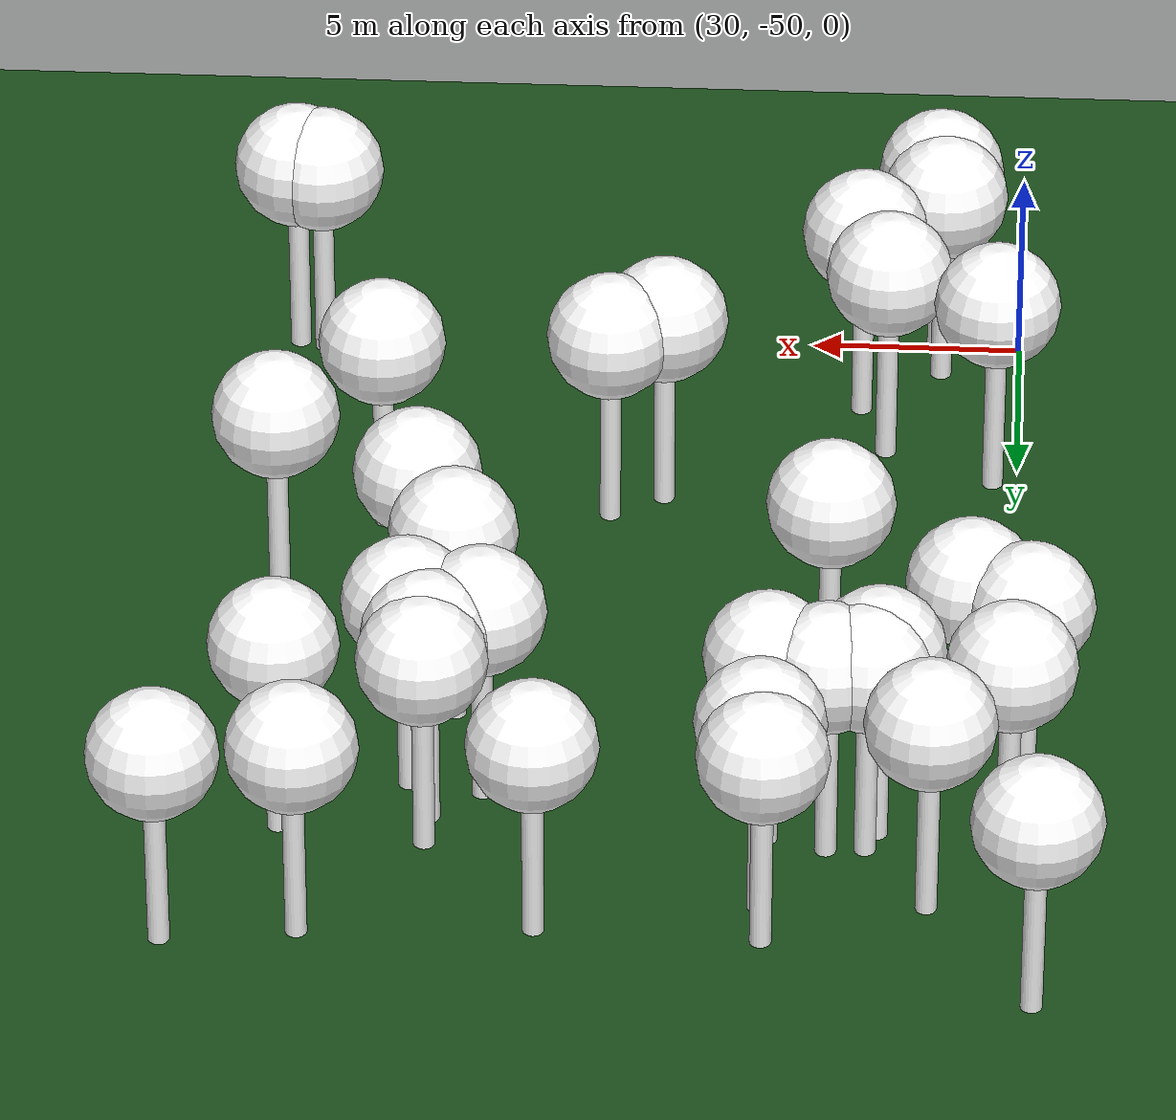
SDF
<sdf version="1.8">
 <world name="forest_world">
  <model name="tree_simple494">
   <static>1</static>
   <link name="link">
    <pose>0 0 0.1 0 -0 0</pose>
    <collision name="collision_trunk">
     <pose>0 0 2 0 -0 0</pose>
     <geometry><cylinder><radius>0.25</radius><length>4</length></cylinder></geometry>
    </collision>
    <collision name="collision_treetop">
     <pose>0 0 5.2 0 -0 0</pose>
     <geometry><sphere><radius>1.5</radius></sphere></geometry>
    </collision>
    <visual name="trunk">
     <pose>0 0 2 0 -0 0</pose>
     <geometry><cylinder><radius>0.25</radius><length>4</length></cylinder></geometry>
     <material>
      <ambient>0.5 0.5 0.5 1</ambient>
      <diffuse>1.0 1.0 1.0 1</diffuse>
      <specular>0.0 0.0 0.0 1</specular>
      <pbr>
       <metal>
        <albedo_map>../worlds/textures/tree_simple_trunk.jpg</albedo_map>
        <metalness>0.0</metalness>
        <roughness>0.8</roughness>
       </metal>
      </pbr>
     </material>
    </visual>
    <visual name="treetop">
     <pose>0 0 5.2 0 -0 0</pose>
     <geometry><sphere><radius>1.5</radius></sphere></geometry>
     <material>
      <ambient>0.5 0.5 0.5 1</ambient>
      <diffuse>1.0 1.0 1.0 1</diffuse>
      <specular>0.0 0.0 0.0 1</specular>
      <pbr>
       <metal>
        <albedo_map>../worlds/textures/tree_simple_treetop.jpg</albedo_map>
        <metalness>0.0</metalness>
        <roughness>0.9</roughness>
       </metal>
      </pbr>
     </material>
    </visual>
   </link>
   <pose>39.6521252177 -42.647901406 0 0 -0 0</pose>
  </model>
  <model name="tree_simple429">
   <static>1</static>
   <link name="link">
    <pose>0 0 0.1 0 -0 0</pose>
    <collision name="collision_trunk">
     <pose>0 0 2 0 -0 0</pose>
     <geometry><cylinder><radius>0.25</radius><length>4</length></cylinder></geometry>
    </collision>
    <collision name="collision_treetop">
     <pose>0 0 5.2 0 -0 0</pose>
     <geometry><sphere><radius>1.5</radius></sphere></geometry>
    </collision>
    <visual name="trunk">
     <pose>0 0 2 0 -0 0</pose>
     <geometry><cylinder><radius>0.25</radius><length>4</length></cylinder></geometry>
     <material>
      <ambient>0.5 0.5 0.5 1</ambient>
      <diffuse>1.0 1.0 1.0 1</diffuse>
      <specular>0.0 0.0 0.0 1</specular>
      <pbr>
       <metal>
        <albedo_map>../worlds/textures/tree_simple_trunk.jpg</albedo_map>
        <metalness>0.0</metalness>
        <roughness>0.8</roughness>
       </metal>
      </pbr>
     </material>
    </visual>
    <visual name="treetop">
     <pose>0 0 5.2 0 -0 0</pose>
     <geometry><sphere><radius>1.5</radius></sphere></geometry>
     <material>
      <ambient>0.5 0.5 0.5 1</ambient>
      <diffuse>1.0 1.0 1.0 1</diffuse>
      <specular>0.0 0.0 0.0 1</specular>
      <pbr>
       <metal>
        <albedo_map>../worlds/textures/tree_simple_treetop.jpg</albedo_map>
        <metalness>0.0</metalness>
        <roughness>0.9</roughness>
       </metal>
      </pbr>
     </material>
    </visual>
   </link>
   <pose>29.4727075469 -24.7358283571 0 0 -0 0</pose>
  </model>
  <model name="tree_simple422">
   <static>1</static>
   <link name="link">
    <pose>0 0 0.1 0 -0 0</pose>
    <collision name="collision_trunk">
     <pose>0 0 2 0 -0 0</pose>
     <geometry><cylinder><radius>0.25</radius><length>4</length></cylinder></geometry>
    </collision>
    <collision name="collision_treetop">
     <pose>0 0 5.2 0 -0 0</pose>
     <geometry><sphere><radius>1.5</radius></sphere></geometry>
    </collision>
    <visual name="trunk">
     <pose>0 0 2 0 -0 0</pose>
     <geometry><cylinder><radius>0.25</radius><length>4</length></cylinder></geometry>
     <material>
      <ambient>0.5 0.5 0.5 1</ambient>
      <diffuse>1.0 1.0 1.0 1</diffuse>
      <specular>0.0 0.0 0.0 1</specular>
      <pbr>
       <metal>
        <albedo_map>../worlds/textures/tree_simple_trunk.jpg</albedo_map>
        <metalness>0.0</metalness>
        <roughness>0.8</roughness>
       </metal>
      </pbr>
     </material>
    </visual>
    <visual name="treetop">
     <pose>0 0 5.2 0 -0 0</pose>
     <geometry><sphere><radius>1.5</radius></sphere></geometry>
     <material>
      <ambient>0.5 0.5 0.5 1</ambient>
      <diffuse>1.0 1.0 1.0 1</diffuse>
      <specular>0.0 0.0 0.0 1</specular>
      <pbr>
       <metal>
        <albedo_map>../worlds/textures/tree_simple_treetop.jpg</albedo_map>
        <metalness>0.0</metalness>
        <roughness>0.9</roughness>
       </metal>
      </pbr>
     </material>
    </visual>
   </link>
   <pose>46.9340594409 -49.3003062786 0 0 -0 0</pose>
  </model>
  <model name="tree_simple406">
   <static>1</static>
   <link name="link">
    <pose>0 0 0.1 0 -0 0</pose>
    <collision name="collision_trunk">
     <pose>0 0 2 0 -0 0</pose>
     <geometry><cylinder><radius>0.25</radius><length>4</length></cylinder></geometry>
    </collision>
    <collision name="collision_treetop">
     <pose>0 0 5.2 0 -0 0</pose>
     <geometry><sphere><radius>1.5</radius></sphere></geometry>
    </collision>
    <visual name="trunk">
     <pose>0 0 2 0 -0 0</pose>
     <geometry><cylinder><radius>0.25</radius><length>4</length></cylinder></geometry>
     <material>
      <ambient>0.5 0.5 0.5 1</ambient>
      <diffuse>1.0 1.0 1.0 1</diffuse>
      <specular>0.0 0.0 0.0 1</specular>
      <pbr>
       <metal>
        <albedo_map>../worlds/textures/tree_simple_trunk.jpg</albedo_map>
        <metalness>0.0</metalness>
        <roughness>0.8</roughness>
       </metal>
      </pbr>
     </material>
    </visual>
    <visual name="treetop">
     <pose>0 0 5.2 0 -0 0</pose>
     <geometry><sphere><radius>1.5</radius></sphere></geometry>
     <material>
      <ambient>0.5 0.5 0.5 1</ambient>
      <diffuse>1.0 1.0 1.0 1</diffuse>
      <specular>0.0 0.0 0.0 1</specular>
      <pbr>
       <metal>
        <albedo_map>../worlds/textures/tree_simple_treetop.jpg</albedo_map>
        <metalness>0.0</metalness>
        <roughness>0.9</roughness>
       </metal>
      </pbr>
     </material>
    </visual>
   </link>
   <pose>31.8934217089 -48.8403630258 0 0 -0 0</pose>
  </model>
  <model name="tree_simple400">
   <static>1</static>
   <link name="link">
    <pose>0 0 0.1 0 -0 0</pose>
    <collision name="collision_trunk">
     <pose>0 0 2 0 -0 0</pose>
     <geometry><cylinder><radius>0.25</radius><length>4</length></cylinder></geometry>
    </collision>
    <collision name="collision_treetop">
     <pose>0 0 5.2 0 -0 0</pose>
     <geometry><sphere><radius>1.5</radius></sphere></geometry>
    </collision>
    <visual name="trunk">
     <pose>0 0 2 0 -0 0</pose>
     <geometry><cylinder><radius>0.25</radius><length>4</length></cylinder></geometry>
     <material>
      <ambient>0.5 0.5 0.5 1</ambient>
      <diffuse>1.0 1.0 1.0 1</diffuse>
      <specular>0.0 0.0 0.0 1</specular>
      <pbr>
       <metal>
        <albedo_map>../worlds/textures/tree_simple_trunk.jpg</albedo_map>
        <metalness>0.0</metalness>
        <roughness>0.8</roughness>
       </metal>
      </pbr>
     </material>
    </visual>
    <visual name="treetop">
     <pose>0 0 5.2 0 -0 0</pose>
     <geometry><sphere><radius>1.5</radius></sphere></geometry>
     <material>
      <ambient>0.5 0.5 0.5 1</ambient>
      <diffuse>1.0 1.0 1.0 1</diffuse>
      <specular>0.0 0.0 0.0 1</specular>
      <pbr>
       <metal>
        <albedo_map>../worlds/textures/tree_simple_treetop.jpg</albedo_map>
        <metalness>0.0</metalness>
        <roughness>0.9</roughness>
       </metal>
      </pbr>
     </material>
    </visual>
   </link>
   <pose>43.2651902792 -29.893141503 0 0 -0 0</pose>
  </model>
  <model name="tree_simple379">
   <static>1</static>
   <link name="link">
    <pose>0 0 0.1 0 -0 0</pose>
    <collision name="collision_trunk">
     <pose>0 0 2 0 -0 0</pose>
     <geometry><cylinder><radius>0.25</radius><length>4</length></cylinder></geometry>
    </collision>
    <collision name="collision_treetop">
     <pose>0 0 5.2 0 -0 0</pose>
     <geometry><sphere><radius>1.5</radius></sphere></geometry>
    </collision>
    <visual name="trunk">
     <pose>0 0 2 0 -0 0</pose>
     <geometry><cylinder><radius>0.25</radius><length>4</length></cylinder></geometry>
     <material>
      <ambient>0.5 0.5 0.5 1</ambient>
      <diffuse>1.0 1.0 1.0 1</diffuse>
      <specular>0.0 0.0 0.0 1</specular>
      <pbr>
       <metal>
        <albedo_map>../worlds/textures/tree_simple_trunk.jpg</albedo_map>
        <metalness>0.0</metalness>
        <roughness>0.8</roughness>
       </metal>
      </pbr>
     </material>
    </visual>
    <visual name="treetop">
     <pose>0 0 5.2 0 -0 0</pose>
     <geometry><sphere><radius>1.5</radius></sphere></geometry>
     <material>
      <ambient>0.5 0.5 0.5 1</ambient>
      <diffuse>1.0 1.0 1.0 1</diffuse>
      <specular>0.0 0.0 0.0 1</specular>
      <pbr>
       <metal>
        <albedo_map>../worlds/textures/tree_simple_treetop.jpg</albedo_map>
        <metalness>0.0</metalness>
        <roughness>0.9</roughness>
       </metal>
      </pbr>
     </material>
    </visual>
   </link>
   <pose>35.6338366469 -27.9469397224 0 0 -0 0</pose>
  </model>
  <model name="tree_simple362">
   <static>1</static>
   <link name="link">
    <pose>0 0 0.1 0 -0 0</pose>
    <collision name="collision_trunk">
     <pose>0 0 2 0 -0 0</pose>
     <geometry><cylinder><radius>0.25</radius><length>4</length></cylinder></geometry>
    </collision>
    <collision name="collision_treetop">
     <pose>0 0 5.2 0 -0 0</pose>
     <geometry><sphere><radius>1.5</radius></sphere></geometry>
    </collision>
    <visual name="trunk">
     <pose>0 0 2 0 -0 0</pose>
     <geometry><cylinder><radius>0.25</radius><length>4</length></cylinder></geometry>
     <material>
      <ambient>0.5 0.5 0.5 1</ambient>
      <diffuse>1.0 1.0 1.0 1</diffuse>
      <specular>0.0 0.0 0.0 1</specular>
      <pbr>
       <metal>
        <albedo_map>../worlds/textures/tree_simple_trunk.jpg</albedo_map>
        <metalness>0.0</metalness>
        <roughness>0.8</roughness>
       </metal>
      </pbr>
     </material>
    </visual>
    <visual name="treetop">
     <pose>0 0 5.2 0 -0 0</pose>
     <geometry><sphere><radius>1.5</radius></sphere></geometry>
     <material>
      <ambient>0.5 0.5 0.5 1</ambient>
      <diffuse>1.0 1.0 1.0 1</diffuse>
      <specular>0.0 0.0 0.0 1</specular>
      <pbr>
       <metal>
        <albedo_map>../worlds/textures/tree_simple_treetop.jpg</albedo_map>
        <metalness>0.0</metalness>
        <roughness>0.9</roughness>
       </metal>
      </pbr>
     </material>
    </visual>
   </link>
   <pose>44.985496552 -42.1503793978 0 0 -0 0</pose>
  </model>
  <model name="tree_simple361">
   <static>1</static>
   <link name="link">
    <pose>0 0 0.1 0 -0 0</pose>
    <collision name="collision_trunk">
     <pose>0 0 2 0 -0 0</pose>
     <geometry><cylinder><radius>0.25</radius><length>4</length></cylinder></geometry>
    </collision>
    <collision name="collision_treetop">
     <pose>0 0 5.2 0 -0 0</pose>
     <geometry><sphere><radius>1.5</radius></sphere></geometry>
    </collision>
    <visual name="trunk">
     <pose>0 0 2 0 -0 0</pose>
     <geometry><cylinder><radius>0.25</radius><length>4</length></cylinder></geometry>
     <material>
      <ambient>0.5 0.5 0.5 1</ambient>
      <diffuse>1.0 1.0 1.0 1</diffuse>
      <specular>0.0 0.0 0.0 1</specular>
      <pbr>
       <metal>
        <albedo_map>../worlds/textures/tree_simple_trunk.jpg</albedo_map>
        <metalness>0.0</metalness>
        <roughness>0.8</roughness>
       </metal>
      </pbr>
     </material>
    </visual>
    <visual name="treetop">
     <pose>0 0 5.2 0 -0 0</pose>
     <geometry><sphere><radius>1.5</radius></sphere></geometry>
     <material>
      <ambient>0.5 0.5 0.5 1</ambient>
      <diffuse>1.0 1.0 1.0 1</diffuse>
      <specular>0.0 0.0 0.0 1</specular>
      <pbr>
       <metal>
        <albedo_map>../worlds/textures/tree_simple_treetop.jpg</albedo_map>
        <metalness>0.0</metalness>
        <roughness>0.9</roughness>
       </metal>
      </pbr>
     </material>
    </visual>
   </link>
   <pose>35.5366757962 -26.7239082098 0 0 -0 0</pose>
  </model>
  <model name="tree_simple330">
   <static>1</static>
   <link name="link">
    <pose>0 0 0.1 0 -0 0</pose>
    <collision name="collision_trunk">
     <pose>0 0 2 0 -0 0</pose>
     <geometry><cylinder><radius>0.25</radius><length>4</length></cylinder></geometry>
    </collision>
    <collision name="collision_treetop">
     <pose>0 0 5.2 0 -0 0</pose>
     <geometry><sphere><radius>1.5</radius></sphere></geometry>
    </collision>
    <visual name="trunk">
     <pose>0 0 2 0 -0 0</pose>
     <geometry><cylinder><radius>0.25</radius><length>4</length></cylinder></geometry>
     <material>
      <ambient>0.5 0.5 0.5 1</ambient>
      <diffuse>1.0 1.0 1.0 1</diffuse>
      <specular>0.0 0.0 0.0 1</specular>
      <pbr>
       <metal>
        <albedo_map>../worlds/textures/tree_simple_trunk.jpg</albedo_map>
        <metalness>0.0</metalness>
        <roughness>0.8</roughness>
       </metal>
      </pbr>
     </material>
    </visual>
    <visual name="treetop">
     <pose>0 0 5.2 0 -0 0</pose>
     <geometry><sphere><radius>1.5</radius></sphere></geometry>
     <material>
      <ambient>0.5 0.5 0.5 1</ambient>
      <diffuse>1.0 1.0 1.0 1</diffuse>
      <specular>0.0 0.0 0.0 1</specular>
      <pbr>
       <metal>
        <albedo_map>../worlds/textures/tree_simple_treetop.jpg</albedo_map>
        <metalness>0.0</metalness>
        <roughness>0.9</roughness>
       </metal>
      </pbr>
     </material>
    </visual>
   </link>
   <pose>46.6176543064 -30.3534647409 0 0 -0 0</pose>
  </model>
  <model name="tree_simple321">
   <static>1</static>
   <link name="link">
    <pose>0 0 0.1 0 -0 0</pose>
    <collision name="collision_trunk">
     <pose>0 0 2 0 -0 0</pose>
     <geometry><cylinder><radius>0.25</radius><length>4</length></cylinder></geometry>
    </collision>
    <collision name="collision_treetop">
     <pose>0 0 5.2 0 -0 0</pose>
     <geometry><sphere><radius>1.5</radius></sphere></geometry>
    </collision>
    <visual name="trunk">
     <pose>0 0 2 0 -0 0</pose>
     <geometry><cylinder><radius>0.25</radius><length>4</length></cylinder></geometry>
     <material>
      <ambient>0.5 0.5 0.5 1</ambient>
      <diffuse>1.0 1.0 1.0 1</diffuse>
      <specular>0.0 0.0 0.0 1</specular>
      <pbr>
       <metal>
        <albedo_map>../worlds/textures/tree_simple_trunk.jpg</albedo_map>
        <metalness>0.0</metalness>
        <roughness>0.8</roughness>
       </metal>
      </pbr>
     </material>
    </visual>
    <visual name="treetop">
     <pose>0 0 5.2 0 -0 0</pose>
     <geometry><sphere><radius>1.5</radius></sphere></geometry>
     <material>
      <ambient>0.5 0.5 0.5 1</ambient>
      <diffuse>1.0 1.0 1.0 1</diffuse>
      <specular>0.0 0.0 0.0 1</specular>
      <pbr>
       <metal>
        <albedo_map>../worlds/textures/tree_simple_treetop.jpg</albedo_map>
        <metalness>0.0</metalness>
        <roughness>0.9</roughness>
       </metal>
      </pbr>
     </material>
    </visual>
   </link>
   <pose>42.046648374 -31.7938593585 0 0 -0 0</pose>
  </model>
  <model name="tree_simple300">
   <static>1</static>
   <link name="link">
    <pose>0 0 0.1 0 -0 0</pose>
    <collision name="collision_trunk">
     <pose>0 0 2 0 -0 0</pose>
     <geometry><cylinder><radius>0.25</radius><length>4</length></cylinder></geometry>
    </collision>
    <collision name="collision_treetop">
     <pose>0 0 5.2 0 -0 0</pose>
     <geometry><sphere><radius>1.5</radius></sphere></geometry>
    </collision>
    <visual name="trunk">
     <pose>0 0 2 0 -0 0</pose>
     <geometry><cylinder><radius>0.25</radius><length>4</length></cylinder></geometry>
     <material>
      <ambient>0.5 0.5 0.5 1</ambient>
      <diffuse>1.0 1.0 1.0 1</diffuse>
      <specular>0.0 0.0 0.0 1</specular>
      <pbr>
       <metal>
        <albedo_map>../worlds/textures/tree_simple_trunk.jpg</albedo_map>
        <metalness>0.0</metalness>
        <roughness>0.8</roughness>
       </metal>
      </pbr>
     </material>
    </visual>
    <visual name="treetop">
     <pose>0 0 5.2 0 -0 0</pose>
     <geometry><sphere><radius>1.5</radius></sphere></geometry>
     <material>
      <ambient>0.5 0.5 0.5 1</ambient>
      <diffuse>1.0 1.0 1.0 1</diffuse>
      <specular>0.0 0.0 0.0 1</specular>
      <pbr>
       <metal>
        <albedo_map>../worlds/textures/tree_simple_treetop.jpg</albedo_map>
        <metalness>0.0</metalness>
        <roughness>0.9</roughness>
       </metal>
      </pbr>
     </material>
    </visual>
   </link>
   <pose>34.2893754597 -36.2522401159 0 0 -0 0</pose>
  </model>
  <model name="tree_simple298">
   <static>1</static>
   <link name="link">
    <pose>0 0 0.1 0 -0 0</pose>
    <collision name="collision_trunk">
     <pose>0 0 2 0 -0 0</pose>
     <geometry><cylinder><radius>0.25</radius><length>4</length></cylinder></geometry>
    </collision>
    <collision name="collision_treetop">
     <pose>0 0 5.2 0 -0 0</pose>
     <geometry><sphere><radius>1.5</radius></sphere></geometry>
    </collision>
    <visual name="trunk">
     <pose>0 0 2 0 -0 0</pose>
     <geometry><cylinder><radius>0.25</radius><length>4</length></cylinder></geometry>
     <material>
      <ambient>0.5 0.5 0.5 1</ambient>
      <diffuse>1.0 1.0 1.0 1</diffuse>
      <specular>0.0 0.0 0.0 1</specular>
      <pbr>
       <metal>
        <albedo_map>../worlds/textures/tree_simple_trunk.jpg</albedo_map>
        <metalness>0.0</metalness>
        <roughness>0.8</roughness>
       </metal>
      </pbr>
     </material>
    </visual>
    <visual name="treetop">
     <pose>0 0 5.2 0 -0 0</pose>
     <geometry><sphere><radius>1.5</radius></sphere></geometry>
     <material>
      <ambient>0.5 0.5 0.5 1</ambient>
      <diffuse>1.0 1.0 1.0 1</diffuse>
      <specular>0.0 0.0 0.0 1</specular>
      <pbr>
       <metal>
        <albedo_map>../worlds/textures/tree_simple_treetop.jpg</albedo_map>
        <metalness>0.0</metalness>
        <roughness>0.9</roughness>
       </metal>
      </pbr>
     </material>
    </visual>
   </link>
   <pose>33.2901714534 -30.1267743678 0 0 -0 0</pose>
  </model>
  <model name="tree_simple280">
   <static>1</static>
   <link name="link">
    <pose>0 0 0.1 0 -0 0</pose>
    <collision name="collision_trunk">
     <pose>0 0 2 0 -0 0</pose>
     <geometry><cylinder><radius>0.25</radius><length>4</length></cylinder></geometry>
    </collision>
    <collision name="collision_treetop">
     <pose>0 0 5.2 0 -0 0</pose>
     <geometry><sphere><radius>1.5</radius></sphere></geometry>
    </collision>
    <visual name="trunk">
     <pose>0 0 2 0 -0 0</pose>
     <geometry><cylinder><radius>0.25</radius><length>4</length></cylinder></geometry>
     <material>
      <ambient>0.5 0.5 0.5 1</ambient>
      <diffuse>1.0 1.0 1.0 1</diffuse>
      <specular>0.0 0.0 0.0 1</specular>
      <pbr>
       <metal>
        <albedo_map>../worlds/textures/tree_simple_trunk.jpg</albedo_map>
        <metalness>0.0</metalness>
        <roughness>0.8</roughness>
       </metal>
      </pbr>
     </material>
    </visual>
    <visual name="treetop">
     <pose>0 0 5.2 0 -0 0</pose>
     <geometry><sphere><radius>1.5</radius></sphere></geometry>
     <material>
      <ambient>0.5 0.5 0.5 1</ambient>
      <diffuse>1.0 1.0 1.0 1</diffuse>
      <specular>0.0 0.0 0.0 1</specular>
      <pbr>
       <metal>
        <albedo_map>../worlds/textures/tree_simple_treetop.jpg</albedo_map>
        <metalness>0.0</metalness>
        <roughness>0.9</roughness>
       </metal>
      </pbr>
     </material>
    </visual>
   </link>
   <pose>42.8499474232 -34.7520527621 0 0 -0 0</pose>
  </model>
  <model name="tree_simple263">
   <static>1</static>
   <link name="link">
    <pose>0 0 0.1 0 -0 0</pose>
    <collision name="collision_trunk">
     <pose>0 0 2 0 -0 0</pose>
     <geometry><cylinder><radius>0.25</radius><length>4</length></cylinder></geometry>
    </collision>
    <collision name="collision_treetop">
     <pose>0 0 5.2 0 -0 0</pose>
     <geometry><sphere><radius>1.5</radius></sphere></geometry>
    </collision>
    <visual name="trunk">
     <pose>0 0 2 0 -0 0</pose>
     <geometry><cylinder><radius>0.25</radius><length>4</length></cylinder></geometry>
     <material>
      <ambient>0.5 0.5 0.5 1</ambient>
      <diffuse>1.0 1.0 1.0 1</diffuse>
      <specular>0.0 0.0 0.0 1</specular>
      <pbr>
       <metal>
        <albedo_map>../worlds/textures/tree_simple_trunk.jpg</albedo_map>
        <metalness>0.0</metalness>
        <roughness>0.8</roughness>
       </metal>
      </pbr>
     </material>
    </visual>
    <visual name="treetop">
     <pose>0 0 5.2 0 -0 0</pose>
     <geometry><sphere><radius>1.5</radius></sphere></geometry>
     <material>
      <ambient>0.5 0.5 0.5 1</ambient>
      <diffuse>1.0 1.0 1.0 1</diffuse>
      <specular>0.0 0.0 0.0 1</specular>
      <pbr>
       <metal>
        <albedo_map>../worlds/textures/tree_simple_treetop.jpg</albedo_map>
        <metalness>0.0</metalness>
        <roughness>0.9</roughness>
       </metal>
      </pbr>
     </material>
    </visual>
   </link>
   <pose>40.6294575453 -26.8945764261 0 0 -0 0</pose>
  </model>
  <model name="tree_simple261">
   <static>1</static>
   <link name="link">
    <pose>0 0 0.1 0 -0 0</pose>
    <collision name="collision_trunk">
     <pose>0 0 2 0 -0 0</pose>
     <geometry><cylinder><radius>0.25</radius><length>4</length></cylinder></geometry>
    </collision>
    <collision name="collision_treetop">
     <pose>0 0 5.2 0 -0 0</pose>
     <geometry><sphere><radius>1.5</radius></sphere></geometry>
    </collision>
    <visual name="trunk">
     <pose>0 0 2 0 -0 0</pose>
     <geometry><cylinder><radius>0.25</radius><length>4</length></cylinder></geometry>
     <material>
      <ambient>0.5 0.5 0.5 1</ambient>
      <diffuse>1.0 1.0 1.0 1</diffuse>
      <specular>0.0 0.0 0.0 1</specular>
      <pbr>
       <metal>
        <albedo_map>../worlds/textures/tree_simple_trunk.jpg</albedo_map>
        <metalness>0.0</metalness>
        <roughness>0.8</roughness>
       </metal>
      </pbr>
     </material>
    </visual>
    <visual name="treetop">
     <pose>0 0 5.2 0 -0 0</pose>
     <geometry><sphere><radius>1.5</radius></sphere></geometry>
     <material>
      <ambient>0.5 0.5 0.5 1</ambient>
      <diffuse>1.0 1.0 1.0 1</diffuse>
      <specular>0.0 0.0 0.0 1</specular>
      <pbr>
       <metal>
        <albedo_map>../worlds/textures/tree_simple_treetop.jpg</albedo_map>
        <metalness>0.0</metalness>
        <roughness>0.9</roughness>
       </metal>
      </pbr>
     </material>
    </visual>
   </link>
   <pose>33.7827414367 -47.2764136507 0 0 -0 0</pose>
  </model>
  <model name="tree_simple255">
   <static>1</static>
   <link name="link">
    <pose>0 0 0.1 0 -0 0</pose>
    <collision name="collision_trunk">
     <pose>0 0 2 0 -0 0</pose>
     <geometry><cylinder><radius>0.25</radius><length>4</length></cylinder></geometry>
    </collision>
    <collision name="collision_treetop">
     <pose>0 0 5.2 0 -0 0</pose>
     <geometry><sphere><radius>1.5</radius></sphere></geometry>
    </collision>
    <visual name="trunk">
     <pose>0 0 2 0 -0 0</pose>
     <geometry><cylinder><radius>0.25</radius><length>4</length></cylinder></geometry>
     <material>
      <ambient>0.5 0.5 0.5 1</ambient>
      <diffuse>1.0 1.0 1.0 1</diffuse>
      <specular>0.0 0.0 0.0 1</specular>
      <pbr>
       <metal>
        <albedo_map>../worlds/textures/tree_simple_trunk.jpg</albedo_map>
        <metalness>0.0</metalness>
        <roughness>0.8</roughness>
       </metal>
      </pbr>
     </material>
    </visual>
    <visual name="treetop">
     <pose>0 0 5.2 0 -0 0</pose>
     <geometry><sphere><radius>1.5</radius></sphere></geometry>
     <material>
      <ambient>0.5 0.5 0.5 1</ambient>
      <diffuse>1.0 1.0 1.0 1</diffuse>
      <specular>0.0 0.0 0.0 1</specular>
      <pbr>
       <metal>
        <albedo_map>../worlds/textures/tree_simple_treetop.jpg</albedo_map>
        <metalness>0.0</metalness>
        <roughness>0.9</roughness>
       </metal>
      </pbr>
     </material>
    </visual>
   </link>
   <pose>30.0970419452 -30.3026780561 0 0 -0 0</pose>
  </model>
  <model name="tree_simple243">
   <static>1</static>
   <link name="link">
    <pose>0 0 0.1 0 -0 0</pose>
    <collision name="collision_trunk">
     <pose>0 0 2 0 -0 0</pose>
     <geometry><cylinder><radius>0.25</radius><length>4</length></cylinder></geometry>
    </collision>
    <collision name="collision_treetop">
     <pose>0 0 5.2 0 -0 0</pose>
     <geometry><sphere><radius>1.5</radius></sphere></geometry>
    </collision>
    <visual name="trunk">
     <pose>0 0 2 0 -0 0</pose>
     <geometry><cylinder><radius>0.25</radius><length>4</length></cylinder></geometry>
     <material>
      <ambient>0.5 0.5 0.5 1</ambient>
      <diffuse>1.0 1.0 1.0 1</diffuse>
      <specular>0.0 0.0 0.0 1</specular>
      <pbr>
       <metal>
        <albedo_map>../worlds/textures/tree_simple_trunk.jpg</albedo_map>
        <metalness>0.0</metalness>
        <roughness>0.8</roughness>
       </metal>
      </pbr>
     </material>
    </visual>
    <visual name="treetop">
     <pose>0 0 5.2 0 -0 0</pose>
     <geometry><sphere><radius>1.5</radius></sphere></geometry>
     <material>
      <ambient>0.5 0.5 0.5 1</ambient>
      <diffuse>1.0 1.0 1.0 1</diffuse>
      <specular>0.0 0.0 0.0 1</specular>
      <pbr>
       <metal>
        <albedo_map>../worlds/textures/tree_simple_treetop.jpg</albedo_map>
        <metalness>0.0</metalness>
        <roughness>0.9</roughness>
       </metal>
      </pbr>
     </material>
    </visual>
   </link>
   <pose>48.9656449897 -26.1871742827 0 0 -0 0</pose>
  </model>
  <model name="tree_simple225">
   <static>1</static>
   <link name="link">
    <pose>0 0 0.1 0 -0 0</pose>
    <collision name="collision_trunk">
     <pose>0 0 2 0 -0 0</pose>
     <geometry><cylinder><radius>0.25</radius><length>4</length></cylinder></geometry>
    </collision>
    <collision name="collision_treetop">
     <pose>0 0 5.2 0 -0 0</pose>
     <geometry><sphere><radius>1.5</radius></sphere></geometry>
    </collision>
    <visual name="trunk">
     <pose>0 0 2 0 -0 0</pose>
     <geometry><cylinder><radius>0.25</radius><length>4</length></cylinder></geometry>
     <material>
      <ambient>0.5 0.5 0.5 1</ambient>
      <diffuse>1.0 1.0 1.0 1</diffuse>
      <specular>0.0 0.0 0.0 1</specular>
      <pbr>
       <metal>
        <albedo_map>../worlds/textures/tree_simple_trunk.jpg</albedo_map>
        <metalness>0.0</metalness>
        <roughness>0.8</roughness>
       </metal>
      </pbr>
     </material>
    </visual>
    <visual name="treetop">
     <pose>0 0 5.2 0 -0 0</pose>
     <geometry><sphere><radius>1.5</radius></sphere></geometry>
     <material>
      <ambient>0.5 0.5 0.5 1</ambient>
      <diffuse>1.0 1.0 1.0 1</diffuse>
      <specular>0.0 0.0 0.0 1</specular>
      <pbr>
       <metal>
        <albedo_map>../worlds/textures/tree_simple_treetop.jpg</albedo_map>
        <metalness>0.0</metalness>
        <roughness>0.9</roughness>
       </metal>
      </pbr>
     </material>
    </visual>
   </link>
   <pose>30.586439973 -44.3528824328 0 0 -0 0</pose>
  </model>
  <model name="tree_simple207">
   <static>1</static>
   <link name="link">
    <pose>0 0 0.1 0 -0 0</pose>
    <collision name="collision_trunk">
     <pose>0 0 2 0 -0 0</pose>
     <geometry><cylinder><radius>0.25</radius><length>4</length></cylinder></geometry>
    </collision>
    <collision name="collision_treetop">
     <pose>0 0 5.2 0 -0 0</pose>
     <geometry><sphere><radius>1.5</radius></sphere></geometry>
    </collision>
    <visual name="trunk">
     <pose>0 0 2 0 -0 0</pose>
     <geometry><cylinder><radius>0.25</radius><length>4</length></cylinder></geometry>
     <material>
      <ambient>0.5 0.5 0.5 1</ambient>
      <diffuse>1.0 1.0 1.0 1</diffuse>
      <specular>0.0 0.0 0.0 1</specular>
      <pbr>
       <metal>
        <albedo_map>../worlds/textures/tree_simple_trunk.jpg</albedo_map>
        <metalness>0.0</metalness>
        <roughness>0.8</roughness>
       </metal>
      </pbr>
     </material>
    </visual>
    <visual name="treetop">
     <pose>0 0 5.2 0 -0 0</pose>
     <geometry><sphere><radius>1.5</radius></sphere></geometry>
     <material>
      <ambient>0.5 0.5 0.5 1</ambient>
      <diffuse>1.0 1.0 1.0 1</diffuse>
      <specular>0.0 0.0 0.0 1</specular>
      <pbr>
       <metal>
        <albedo_map>../worlds/textures/tree_simple_treetop.jpg</albedo_map>
        <metalness>0.0</metalness>
        <roughness>0.9</roughness>
       </metal>
      </pbr>
     </material>
    </visual>
   </link>
   <pose>29.7171513821 -32.5331350523 0 0 -0 0</pose>
  </model>
  <model name="tree_simple202">
   <static>1</static>
   <link name="link">
    <pose>0 0 0.1 0 -0 0</pose>
    <collision name="collision_trunk">
     <pose>0 0 2 0 -0 0</pose>
     <geometry><cylinder><radius>0.25</radius><length>4</length></cylinder></geometry>
    </collision>
    <collision name="collision_treetop">
     <pose>0 0 5.2 0 -0 0</pose>
     <geometry><sphere><radius>1.5</radius></sphere></geometry>
    </collision>
    <visual name="trunk">
     <pose>0 0 2 0 -0 0</pose>
     <geometry><cylinder><radius>0.25</radius><length>4</length></cylinder></geometry>
     <material>
      <ambient>0.5 0.5 0.5 1</ambient>
      <diffuse>1.0 1.0 1.0 1</diffuse>
      <specular>0.0 0.0 0.0 1</specular>
      <pbr>
       <metal>
        <albedo_map>../worlds/textures/tree_simple_trunk.jpg</albedo_map>
        <metalness>0.0</metalness>
        <roughness>0.8</roughness>
       </metal>
      </pbr>
     </material>
    </visual>
    <visual name="treetop">
     <pose>0 0 5.2 0 -0 0</pose>
     <geometry><sphere><radius>1.5</radius></sphere></geometry>
     <material>
      <ambient>0.5 0.5 0.5 1</ambient>
      <diffuse>1.0 1.0 1.0 1</diffuse>
      <specular>0.0 0.0 0.0 1</specular>
      <pbr>
       <metal>
        <albedo_map>../worlds/textures/tree_simple_treetop.jpg</albedo_map>
        <metalness>0.0</metalness>
        <roughness>0.9</roughness>
       </metal>
      </pbr>
     </material>
    </visual>
   </link>
   <pose>33.1651643467 -45.5260416914 0 0 -0 0</pose>
  </model>
  <model name="tree_simple182">
   <static>1</static>
   <link name="link">
    <pose>0 0 0.1 0 -0 0</pose>
    <collision name="collision_trunk">
     <pose>0 0 2 0 -0 0</pose>
     <geometry><cylinder><radius>0.25</radius><length>4</length></cylinder></geometry>
    </collision>
    <collision name="collision_treetop">
     <pose>0 0 5.2 0 -0 0</pose>
     <geometry><sphere><radius>1.5</radius></sphere></geometry>
    </collision>
    <visual name="trunk">
     <pose>0 0 2 0 -0 0</pose>
     <geometry><cylinder><radius>0.25</radius><length>4</length></cylinder></geometry>
     <material>
      <ambient>0.5 0.5 0.5 1</ambient>
      <diffuse>1.0 1.0 1.0 1</diffuse>
      <specular>0.0 0.0 0.0 1</specular>
      <pbr>
       <metal>
        <albedo_map>../worlds/textures/tree_simple_trunk.jpg</albedo_map>
        <metalness>0.0</metalness>
        <roughness>0.8</roughness>
       </metal>
      </pbr>
     </material>
    </visual>
    <visual name="treetop">
     <pose>0 0 5.2 0 -0 0</pose>
     <geometry><sphere><radius>1.5</radius></sphere></geometry>
     <material>
      <ambient>0.5 0.5 0.5 1</ambient>
      <diffuse>1.0 1.0 1.0 1</diffuse>
      <specular>0.0 0.0 0.0 1</specular>
      <pbr>
       <metal>
        <albedo_map>../worlds/textures/tree_simple_treetop.jpg</albedo_map>
        <metalness>0.0</metalness>
        <roughness>0.9</roughness>
       </metal>
      </pbr>
     </material>
    </visual>
   </link>
   <pose>31.0475626231 -33.3896196972 0 0 -0 0</pose>
  </model>
  <model name="tree_simple179">
   <static>1</static>
   <link name="link">
    <pose>0 0 0.1 0 -0 0</pose>
    <collision name="collision_trunk">
     <pose>0 0 2 0 -0 0</pose>
     <geometry><cylinder><radius>0.25</radius><length>4</length></cylinder></geometry>
    </collision>
    <collision name="collision_treetop">
     <pose>0 0 5.2 0 -0 0</pose>
     <geometry><sphere><radius>1.5</radius></sphere></geometry>
    </collision>
    <visual name="trunk">
     <pose>0 0 2 0 -0 0</pose>
     <geometry><cylinder><radius>0.25</radius><length>4</length></cylinder></geometry>
     <material>
      <ambient>0.5 0.5 0.5 1</ambient>
      <diffuse>1.0 1.0 1.0 1</diffuse>
      <specular>0.0 0.0 0.0 1</specular>
      <pbr>
       <metal>
        <albedo_map>../worlds/textures/tree_simple_trunk.jpg</albedo_map>
        <metalness>0.0</metalness>
        <roughness>0.8</roughness>
       </metal>
      </pbr>
     </material>
    </visual>
    <visual name="treetop">
     <pose>0 0 5.2 0 -0 0</pose>
     <geometry><sphere><radius>1.5</radius></sphere></geometry>
     <material>
      <ambient>0.5 0.5 0.5 1</ambient>
      <diffuse>1.0 1.0 1.0 1</diffuse>
      <specular>0.0 0.0 0.0 1</specular>
      <pbr>
       <metal>
        <albedo_map>../worlds/textures/tree_simple_treetop.jpg</albedo_map>
        <metalness>0.0</metalness>
        <roughness>0.9</roughness>
       </metal>
      </pbr>
     </material>
    </visual>
   </link>
   <pose>33.0376036796 -30.7285936232 0 0 -0 0</pose>
  </model>
  <model name="tree_simple173">
   <static>1</static>
   <link name="link">
    <pose>0 0 0.1 0 -0 0</pose>
    <collision name="collision_trunk">
     <pose>0 0 2 0 -0 0</pose>
     <geometry><cylinder><radius>0.25</radius><length>4</length></cylinder></geometry>
    </collision>
    <collision name="collision_treetop">
     <pose>0 0 5.2 0 -0 0</pose>
     <geometry><sphere><radius>1.5</radius></sphere></geometry>
    </collision>
    <visual name="trunk">
     <pose>0 0 2 0 -0 0</pose>
     <geometry><cylinder><radius>0.25</radius><length>4</length></cylinder></geometry>
     <material>
      <ambient>0.5 0.5 0.5 1</ambient>
      <diffuse>1.0 1.0 1.0 1</diffuse>
      <specular>0.0 0.0 0.0 1</specular>
      <pbr>
       <metal>
        <albedo_map>../worlds/textures/tree_simple_trunk.jpg</albedo_map>
        <metalness>0.0</metalness>
        <roughness>0.8</roughness>
       </metal>
      </pbr>
     </material>
    </visual>
    <visual name="treetop">
     <pose>0 0 5.2 0 -0 0</pose>
     <geometry><sphere><radius>1.5</radius></sphere></geometry>
     <material>
      <ambient>0.5 0.5 0.5 1</ambient>
      <diffuse>1.0 1.0 1.0 1</diffuse>
      <specular>0.0 0.0 0.0 1</specular>
      <pbr>
       <metal>
        <albedo_map>../worlds/textures/tree_simple_treetop.jpg</albedo_map>
        <metalness>0.0</metalness>
        <roughness>0.9</roughness>
       </metal>
      </pbr>
     </material>
    </visual>
   </link>
   <pose>43.8187371286 -37.037678565 0 0 -0 0</pose>
  </model>
  <model name="tree_simple137">
   <static>1</static>
   <link name="link">
    <pose>0 0 0.1 0 -0 0</pose>
    <collision name="collision_trunk">
     <pose>0 0 2 0 -0 0</pose>
     <geometry><cylinder><radius>0.25</radius><length>4</length></cylinder></geometry>
    </collision>
    <collision name="collision_treetop">
     <pose>0 0 5.2 0 -0 0</pose>
     <geometry><sphere><radius>1.5</radius></sphere></geometry>
    </collision>
    <visual name="trunk">
     <pose>0 0 2 0 -0 0</pose>
     <geometry><cylinder><radius>0.25</radius><length>4</length></cylinder></geometry>
     <material>
      <ambient>0.5 0.5 0.5 1</ambient>
      <diffuse>1.0 1.0 1.0 1</diffuse>
      <specular>0.0 0.0 0.0 1</specular>
      <pbr>
       <metal>
        <albedo_map>../worlds/textures/tree_simple_trunk.jpg</albedo_map>
        <metalness>0.0</metalness>
        <roughness>0.8</roughness>
       </metal>
      </pbr>
     </material>
    </visual>
    <visual name="treetop">
     <pose>0 0 5.2 0 -0 0</pose>
     <geometry><sphere><radius>1.5</radius></sphere></geometry>
     <material>
      <ambient>0.5 0.5 0.5 1</ambient>
      <diffuse>1.0 1.0 1.0 1</diffuse>
      <specular>0.0 0.0 0.0 1</specular>
      <pbr>
       <metal>
        <albedo_map>../worlds/textures/tree_simple_treetop.jpg</albedo_map>
        <metalness>0.0</metalness>
        <roughness>0.9</roughness>
       </metal>
      </pbr>
     </material>
    </visual>
   </link>
   <pose>43.7452610824 -32.0584108729 0 0 -0 0</pose>
  </model>
  <model name="tree_simple136">
   <static>1</static>
   <link name="link">
    <pose>0 0 0.1 0 -0 0</pose>
    <collision name="collision_trunk">
     <pose>0 0 2 0 -0 0</pose>
     <geometry><cylinder><radius>0.25</radius><length>4</length></cylinder></geometry>
    </collision>
    <collision name="collision_treetop">
     <pose>0 0 5.2 0 -0 0</pose>
     <geometry><sphere><radius>1.5</radius></sphere></geometry>
    </collision>
    <visual name="trunk">
     <pose>0 0 2 0 -0 0</pose>
     <geometry><cylinder><radius>0.25</radius><length>4</length></cylinder></geometry>
     <material>
      <ambient>0.5 0.5 0.5 1</ambient>
      <diffuse>1.0 1.0 1.0 1</diffuse>
      <specular>0.0 0.0 0.0 1</specular>
      <pbr>
       <metal>
        <albedo_map>../worlds/textures/tree_simple_trunk.jpg</albedo_map>
        <metalness>0.0</metalness>
        <roughness>0.8</roughness>
       </metal>
      </pbr>
     </material>
    </visual>
    <visual name="treetop">
     <pose>0 0 5.2 0 -0 0</pose>
     <geometry><sphere><radius>1.5</radius></sphere></geometry>
     <material>
      <ambient>0.5 0.5 0.5 1</ambient>
      <diffuse>1.0 1.0 1.0 1</diffuse>
      <specular>0.0 0.0 0.0 1</specular>
      <pbr>
       <metal>
        <albedo_map>../worlds/textures/tree_simple_treetop.jpg</albedo_map>
        <metalness>0.0</metalness>
        <roughness>0.9</roughness>
       </metal>
      </pbr>
     </material>
    </visual>
   </link>
   <pose>47.5460904113 -49.4529023421 0 0 -0 0</pose>
  </model>
  <model name="tree_simple133">
   <static>1</static>
   <link name="link">
    <pose>0 0 0.1 0 -0 0</pose>
    <collision name="collision_trunk">
     <pose>0 0 2 0 -0 0</pose>
     <geometry><cylinder><radius>0.25</radius><length>4</length></cylinder></geometry>
    </collision>
    <collision name="collision_treetop">
     <pose>0 0 5.2 0 -0 0</pose>
     <geometry><sphere><radius>1.5</radius></sphere></geometry>
    </collision>
    <visual name="trunk">
     <pose>0 0 2 0 -0 0</pose>
     <geometry><cylinder><radius>0.25</radius><length>4</length></cylinder></geometry>
     <material>
      <ambient>0.5 0.5 0.5 1</ambient>
      <diffuse>1.0 1.0 1.0 1</diffuse>
      <specular>0.0 0.0 0.0 1</specular>
      <pbr>
       <metal>
        <albedo_map>../worlds/textures/tree_simple_trunk.jpg</albedo_map>
        <metalness>0.0</metalness>
        <roughness>0.8</roughness>
       </metal>
      </pbr>
     </material>
    </visual>
    <visual name="treetop">
     <pose>0 0 5.2 0 -0 0</pose>
     <geometry><sphere><radius>1.5</radius></sphere></geometry>
     <material>
      <ambient>0.5 0.5 0.5 1</ambient>
      <diffuse>1.0 1.0 1.0 1</diffuse>
      <specular>0.0 0.0 0.0 1</specular>
      <pbr>
       <metal>
        <albedo_map>../worlds/textures/tree_simple_treetop.jpg</albedo_map>
        <metalness>0.0</metalness>
        <roughness>0.9</roughness>
       </metal>
      </pbr>
     </material>
    </visual>
   </link>
   <pose>34.1791859659 -30.0610700111 0 0 -0 0</pose>
  </model>
  <model name="tree_simple128">
   <static>1</static>
   <link name="link">
    <pose>0 0 0.1 0 -0 0</pose>
    <collision name="collision_trunk">
     <pose>0 0 2 0 -0 0</pose>
     <geometry><cylinder><radius>0.25</radius><length>4</length></cylinder></geometry>
    </collision>
    <collision name="collision_treetop">
     <pose>0 0 5.2 0 -0 0</pose>
     <geometry><sphere><radius>1.5</radius></sphere></geometry>
    </collision>
    <visual name="trunk">
     <pose>0 0 2 0 -0 0</pose>
     <geometry><cylinder><radius>0.25</radius><length>4</length></cylinder></geometry>
     <material>
      <ambient>0.5 0.5 0.5 1</ambient>
      <diffuse>1.0 1.0 1.0 1</diffuse>
      <specular>0.0 0.0 0.0 1</specular>
      <pbr>
       <metal>
        <albedo_map>../worlds/textures/tree_simple_trunk.jpg</albedo_map>
        <metalness>0.0</metalness>
        <roughness>0.8</roughness>
       </metal>
      </pbr>
     </material>
    </visual>
    <visual name="treetop">
     <pose>0 0 5.2 0 -0 0</pose>
     <geometry><sphere><radius>1.5</radius></sphere></geometry>
     <material>
      <ambient>0.5 0.5 0.5 1</ambient>
      <diffuse>1.0 1.0 1.0 1</diffuse>
      <specular>0.0 0.0 0.0 1</specular>
      <pbr>
       <metal>
        <albedo_map>../worlds/textures/tree_simple_treetop.jpg</albedo_map>
        <metalness>0.0</metalness>
        <roughness>0.9</roughness>
       </metal>
      </pbr>
     </material>
    </visual>
   </link>
   <pose>45.9201829733 -26.5855260125 0 0 -0 0</pose>
  </model>
  <model name="tree_simple57">
   <static>1</static>
   <link name="link">
    <pose>0 0 0.1 0 -0 0</pose>
    <collision name="collision_trunk">
     <pose>0 0 2 0 -0 0</pose>
     <geometry><cylinder><radius>0.25</radius><length>4</length></cylinder></geometry>
    </collision>
    <collision name="collision_treetop">
     <pose>0 0 5.2 0 -0 0</pose>
     <geometry><sphere><radius>1.5</radius></sphere></geometry>
    </collision>
    <visual name="trunk">
     <pose>0 0 2 0 -0 0</pose>
     <geometry><cylinder><radius>0.25</radius><length>4</length></cylinder></geometry>
     <material>
      <ambient>0.5 0.5 0.5 1</ambient>
      <diffuse>1.0 1.0 1.0 1</diffuse>
      <specular>0.0 0.0 0.0 1</specular>
      <pbr>
       <metal>
        <albedo_map>../worlds/textures/tree_simple_trunk.jpg</albedo_map>
        <metalness>0.0</metalness>
        <roughness>0.8</roughness>
       </metal>
      </pbr>
     </material>
    </visual>
    <visual name="treetop">
     <pose>0 0 5.2 0 -0 0</pose>
     <geometry><sphere><radius>1.5</radius></sphere></geometry>
     <material>
      <ambient>0.5 0.5 0.5 1</ambient>
      <diffuse>1.0 1.0 1.0 1</diffuse>
      <specular>0.0 0.0 0.0 1</specular>
      <pbr>
       <metal>
        <albedo_map>../worlds/textures/tree_simple_treetop.jpg</albedo_map>
        <metalness>0.0</metalness>
        <roughness>0.9</roughness>
       </metal>
      </pbr>
     </material>
    </visual>
   </link>
   <pose>43.2092275704 -30.8438737216 0 0 -0 0</pose>
  </model>
  <model name="tree_simple56">
   <static>1</static>
   <link name="link">
    <pose>0 0 0.1 0 -0 0</pose>
    <collision name="collision_trunk">
     <pose>0 0 2 0 -0 0</pose>
     <geometry><cylinder><radius>0.25</radius><length>4</length></cylinder></geometry>
    </collision>
    <collision name="collision_treetop">
     <pose>0 0 5.2 0 -0 0</pose>
     <geometry><sphere><radius>1.5</radius></sphere></geometry>
    </collision>
    <visual name="trunk">
     <pose>0 0 2 0 -0 0</pose>
     <geometry><cylinder><radius>0.25</radius><length>4</length></cylinder></geometry>
     <material>
      <ambient>0.5 0.5 0.5 1</ambient>
      <diffuse>1.0 1.0 1.0 1</diffuse>
      <specular>0.0 0.0 0.0 1</specular>
      <pbr>
       <metal>
        <albedo_map>../worlds/textures/tree_simple_trunk.jpg</albedo_map>
        <metalness>0.0</metalness>
        <roughness>0.8</roughness>
       </metal>
      </pbr>
     </material>
    </visual>
    <visual name="treetop">
     <pose>0 0 5.2 0 -0 0</pose>
     <geometry><sphere><radius>1.5</radius></sphere></geometry>
     <material>
      <ambient>0.5 0.5 0.5 1</ambient>
      <diffuse>1.0 1.0 1.0 1</diffuse>
      <specular>0.0 0.0 0.0 1</specular>
      <pbr>
       <metal>
        <albedo_map>../worlds/textures/tree_simple_treetop.jpg</albedo_map>
        <metalness>0.0</metalness>
        <roughness>0.9</roughness>
       </metal>
      </pbr>
     </material>
    </visual>
   </link>
   <pose>38.4020388854 -43.3995733347 0 0 -0 0</pose>
  </model>
  <model name="tree_simple16">
   <static>1</static>
   <link name="link">
    <pose>0 0 0.1 0 -0 0</pose>
    <collision name="collision_trunk">
     <pose>0 0 2 0 -0 0</pose>
     <geometry><cylinder><radius>0.25</radius><length>4</length></cylinder></geometry>
    </collision>
    <collision name="collision_treetop">
     <pose>0 0 5.2 0 -0 0</pose>
     <geometry><sphere><radius>1.5</radius></sphere></geometry>
    </collision>
    <visual name="trunk">
     <pose>0 0 2 0 -0 0</pose>
     <geometry><cylinder><radius>0.25</radius><length>4</length></cylinder></geometry>
     <material>
      <ambient>0.5 0.5 0.5 1</ambient>
      <diffuse>1.0 1.0 1.0 1</diffuse>
      <specular>0.0 0.0 0.0 1</specular>
      <pbr>
       <metal>
        <albedo_map>../worlds/textures/tree_simple_trunk.jpg</albedo_map>
        <metalness>0.0</metalness>
        <roughness>0.8</roughness>
       </metal>
      </pbr>
     </material>
    </visual>
    <visual name="treetop">
     <pose>0 0 5.2 0 -0 0</pose>
     <geometry><sphere><radius>1.5</radius></sphere></geometry>
     <material>
      <ambient>0.5 0.5 0.5 1</ambient>
      <diffuse>1.0 1.0 1.0 1</diffuse>
      <specular>0.0 0.0 0.0 1</specular>
      <pbr>
       <metal>
        <albedo_map>../worlds/textures/tree_simple_treetop.jpg</albedo_map>
        <metalness>0.0</metalness>
        <roughness>0.9</roughness>
       </metal>
      </pbr>
     </material>
    </visual>
   </link>
   <pose>32.0026070431 -49.9548957823 0 0 -0 0</pose>
  </model>
  <model name="tree_simple9">
   <static>1</static>
   <link name="link">
    <pose>0 0 0.1 0 -0 0</pose>
    <collision name="collision_trunk">
     <pose>0 0 2 0 -0 0</pose>
     <geometry><cylinder><radius>0.25</radius><length>4</length></cylinder></geometry>
    </collision>
    <collision name="collision_treetop">
     <pose>0 0 5.2 0 -0 0</pose>
     <geometry><sphere><radius>1.5</radius></sphere></geometry>
    </collision>
    <visual name="trunk">
     <pose>0 0 2 0 -0 0</pose>
     <geometry><cylinder><radius>0.25</radius><length>4</length></cylinder></geometry>
     <material>
      <ambient>0.5 0.5 0.5 1</ambient>
      <diffuse>1.0 1.0 1.0 1</diffuse>
      <specular>0.0 0.0 0.0 1</specular>
      <pbr>
       <metal>
        <albedo_map>../worlds/textures/tree_simple_trunk.jpg</albedo_map>
        <metalness>0.0</metalness>
        <roughness>0.8</roughness>
       </metal>
      </pbr>
     </material>
    </visual>
    <visual name="treetop">
     <pose>0 0 5.2 0 -0 0</pose>
     <geometry><sphere><radius>1.5</radius></sphere></geometry>
     <material>
      <ambient>0.5 0.5 0.5 1</ambient>
      <diffuse>1.0 1.0 1.0 1</diffuse>
      <specular>0.0 0.0 0.0 1</specular>
      <pbr>
       <metal>
        <albedo_map>../worlds/textures/tree_simple_treetop.jpg</albedo_map>
        <metalness>0.0</metalness>
        <roughness>0.9</roughness>
       </metal>
      </pbr>
     </material>
    </visual>
   </link>
   <pose>31.866196036 -28.0908269066 0 0 -0 0</pose>
  </model>
  <model name="tree_simple5">
   <static>1</static>
   <link name="link">
    <pose>0 0 0.1 0 -0 0</pose>
    <collision name="collision_trunk">
     <pose>0 0 2 0 -0 0</pose>
     <geometry><cylinder><radius>0.25</radius><length>4</length></cylinder></geometry>
    </collision>
    <collision name="collision_treetop">
     <pose>0 0 5.2 0 -0 0</pose>
     <geometry><sphere><radius>1.5</radius></sphere></geometry>
    </collision>
    <visual name="trunk">
     <pose>0 0 2 0 -0 0</pose>
     <geometry><cylinder><radius>0.25</radius><length>4</length></cylinder></geometry>
     <material>
      <ambient>0.5 0.5 0.5 1</ambient>
      <diffuse>1.0 1.0 1.0 1</diffuse>
      <specular>0.0 0.0 0.0 1</specular>
      <pbr>
       <metal>
        <albedo_map>../worlds/textures/tree_simple_trunk.jpg</albedo_map>
        <metalness>0.0</metalness>
        <roughness>0.8</roughness>
       </metal>
      </pbr>
     </material>
    </visual>
    <visual name="treetop">
     <pose>0 0 5.2 0 -0 0</pose>
     <geometry><sphere><radius>1.5</radius></sphere></geometry>
     <material>
      <ambient>0.5 0.5 0.5 1</ambient>
      <diffuse>1.0 1.0 1.0 1</diffuse>
      <specular>0.0 0.0 0.0 1</specular>
      <pbr>
       <metal>
        <albedo_map>../worlds/textures/tree_simple_treetop.jpg</albedo_map>
        <metalness>0.0</metalness>
        <roughness>0.9</roughness>
       </metal>
      </pbr>
     </material>
    </visual>
   </link>
   <pose>47.2513402204 -39.1195744198 0 0 -0 0</pose>
  </model>
  <model name="tree_simple1">
   <static>1</static>
   <link name="link">
    <pose>0 0 0.1 0 -0 0</pose>
    <collision name="collision_trunk">
     <pose>0 0 2 0 -0 0</pose>
     <geometry><cylinder><radius>0.25</radius><length>4</length></cylinder></geometry>
    </collision>
    <collision name="collision_treetop">
     <pose>0 0 5.2 0 -0 0</pose>
     <geometry><sphere><radius>1.5</radius></sphere></geometry>
    </collision>
    <visual name="trunk">
     <pose>0 0 2 0 -0 0</pose>
     <geometry><cylinder><radius>0.25</radius><length>4</length></cylinder></geometry>
     <material>
      <ambient>0.5 0.5 0.5 1</ambient>
      <diffuse>1.0 1.0 1.0 1</diffuse>
      <specular>0.0 0.0 0.0 1</specular>
      <pbr>
       <metal>
        <albedo_map>../worlds/textures/tree_simple_trunk.jpg</albedo_map>
        <metalness>0.0</metalness>
        <roughness>0.8</roughness>
       </metal>
      </pbr>
     </material>
    </visual>
    <visual name="treetop">
     <pose>0 0 5.2 0 -0 0</pose>
     <geometry><sphere><radius>1.5</radius></sphere></geometry>
     <material>
      <ambient>0.5 0.5 0.5 1</ambient>
      <diffuse>1.0 1.0 1.0 1</diffuse>
      <specular>0.0 0.0 0.0 1</specular>
      <pbr>
       <metal>
        <albedo_map>../worlds/textures/tree_simple_treetop.jpg</albedo_map>
        <metalness>0.0</metalness>
        <roughness>0.9</roughness>
       </metal>
      </pbr>
     </material>
    </visual>
   </link>
   <pose>35.5272832609 -30.417089687 0 0 -0 0</pose>
  </model>
  <model name="ground_plane">
   <static>true</static>
   <link name="link">
    <collision name="collision">
     <geometry><mesh><uri>../worlds/textures/grass_plane.dae</uri><scale>1 1 1</scale></mesh></geometry>
     <surface><friction><ode><mu>1</mu><mu2>1</mu2></ode></friction></surface>
    </collision>
    <visual name="snow">
     <cast_shadows>false</cast_shadows>
     <geometry><mesh><uri>../worlds/textures/grass_plane.dae</uri><scale>1 1 1</scale></mesh></geometry>
     <material>
      <ambient>0.05 0.2 0.05 1</ambient>
      <diffuse>0.1 0.3 0.1 1</diffuse>
      <specular>0.05 0.05 0.05 1</specular>
     </material>
    </visual>
   </link>
  </model>
 </world>
</sdf>
